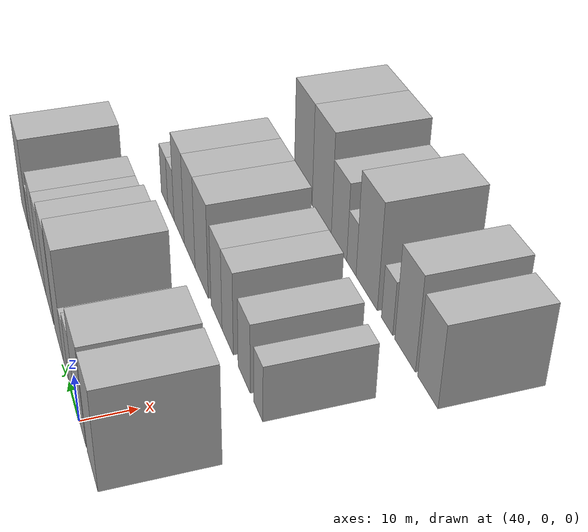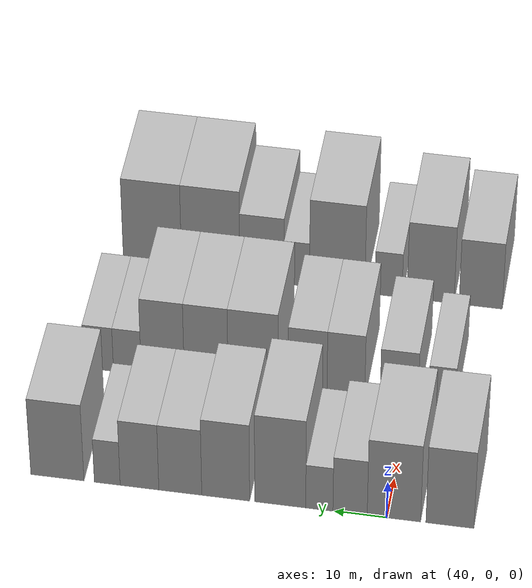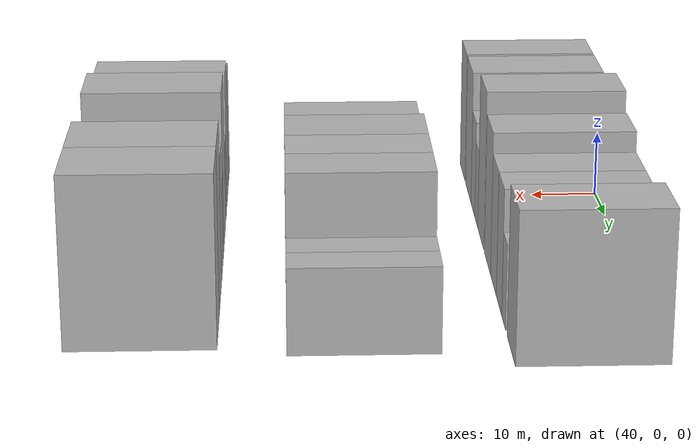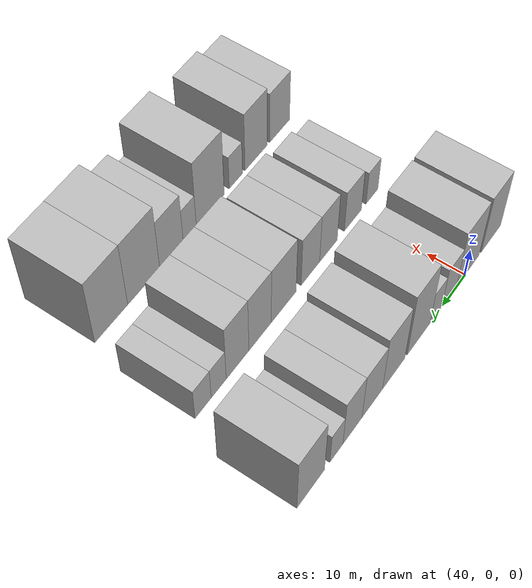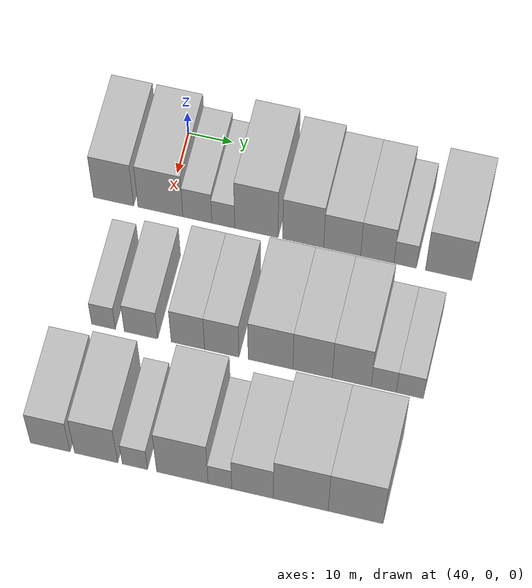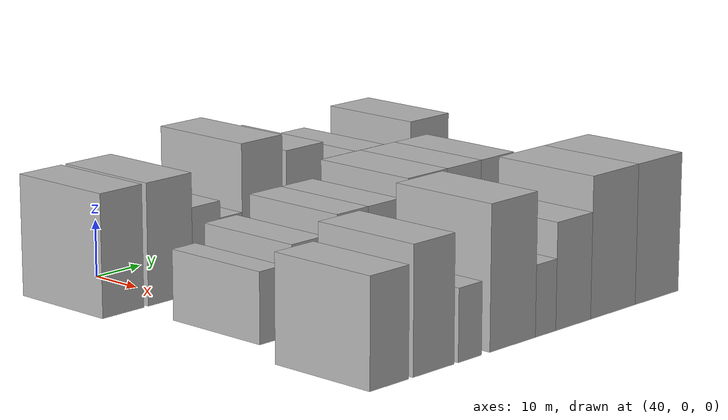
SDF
<sdf version="1.6">
 <world name="default">
  <model name="building_31">
   <static>1</static>
   <pose>50.0000 -11.9085 0 0.000000 0.000000 0.000000</pose>
   <link name="link">
    <pose>0 0 10.50 0 0 0</pose>
    <collision name="collision"><geometry><box><size>20.0000 9.0835 21.0000</size></box></geometry></collision>
    <visual name="visual">
     <cast_shadows>0</cast_shadows>
     <geometry><box><size>20.0000 9.0835 21.0000</size></box></geometry>
     <material>
      <script>
       <uri>model://HANNAS_wall/materials/scripts</uri>
       <uri>model://HANNAS_wall/materials/textures</uri>
       <name>vrc/HANNAS_wall</name>
      </script>
     </material>
    </visual>
   </link>
  </model>
  <model name="building_32">
   <static>1</static>
   <pose>50.0000 -1.2948 0 0.000000 0.000000 0.000000</pose>
   <link name="link">
    <pose>0 0 10.50 0 0 0</pose>
    <collision name="collision"><geometry><box><size>20.0000 10.1440 21.0000</size></box></geometry></collision>
    <visual name="visual">
     <cast_shadows>0</cast_shadows>
     <geometry><box><size>20.0000 10.1440 21.0000</size></box></geometry>
     <material>
      <script>
       <uri>model://HANNAS_wall/materials/scripts</uri>
       <uri>model://HANNAS_wall/materials/textures</uri>
       <name>vrc/HANNAS_wall</name>
      </script>
     </material>
    </visual>
   </link>
  </model>
  <model name="building_33">
   <static>1</static>
   <pose>50.0000 7.0367 0 0.000000 0.000000 0.000000</pose>
   <link name="link">
    <pose>0 0 7.50 0 0 0</pose>
    <collision name="collision"><geometry><box><size>20.0000 6.5191 15.0000</size></box></geometry></collision>
    <visual name="visual">
     <cast_shadows>0</cast_shadows>
     <geometry><box><size>20.0000 6.5191 15.0000</size></box></geometry>
     <material>
      <script>
       <uri>model://HANNAS_wall/materials/scripts</uri>
       <uri>model://HANNAS_wall/materials/textures</uri>
       <name>vrc/HANNAS_wall</name>
      </script>
     </material>
    </visual>
   </link>
  </model>
  <model name="building_34">
   <static>1</static>
   <pose>50.0000 12.8875 0 0.000000 0.000000 0.000000</pose>
   <link name="link">
    <pose>0 0 6.00 0 0 0</pose>
    <collision name="collision"><geometry><box><size>20.0000 5.1826 12.0000</size></box></geometry></collision>
    <visual name="visual">
     <cast_shadows>0</cast_shadows>
     <geometry><box><size>20.0000 5.1826 12.0000</size></box></geometry>
     <material>
      <script>
       <uri>model://HANNAS_wall/materials/scripts</uri>
       <uri>model://HANNAS_wall/materials/textures</uri>
       <name>vrc/HANNAS_wall</name>
      </script>
     </material>
    </visual>
   </link>
  </model>
  <model name="building_35">
   <static>1</static>
   <pose>50.0000 20.3388 0 0.000000 0.000000 0.000000</pose>
   <link name="link">
    <pose>0 0 12.00 0 0 0</pose>
    <collision name="collision"><geometry><box><size>20.0000 9.7201 24.0000</size></box></geometry></collision>
    <visual name="visual">
     <cast_shadows>0</cast_shadows>
     <geometry><box><size>20.0000 9.7201 24.0000</size></box></geometry>
     <material>
      <script>
       <uri>model://HANNAS_wall/materials/scripts</uri>
       <uri>model://HANNAS_wall/materials/textures</uri>
       <name>vrc/HANNAS_wall</name>
      </script>
     </material>
    </visual>
   </link>
  </model>
  <model name="building_36">
   <static>1</static>
   <pose>50.0000 30.7863 0 0.000000 0.000000 0.000000</pose>
   <link name="link">
    <pose>0 0 10.50 0 0 0</pose>
    <collision name="collision"><geometry><box><size>20.0000 9.1749 21.0000</size></box></geometry></collision>
    <visual name="visual">
     <cast_shadows>0</cast_shadows>
     <geometry><box><size>20.0000 9.1749 21.0000</size></box></geometry>
     <material>
      <script>
       <uri>model://HANNAS_wall/materials/scripts</uri>
       <uri>model://HANNAS_wall/materials/textures</uri>
       <name>vrc/HANNAS_wall</name>
      </script>
     </material>
    </visual>
   </link>
  </model>
  <model name="building_37">
   <static>1</static>
   <pose>50.0000 39.4990 0 0.000000 0.000000 0.000000</pose>
   <link name="link">
    <pose>0 0 9.00 0 0 0</pose>
    <collision name="collision"><geometry><box><size>20.0000 8.2504 18.0000</size></box></geometry></collision>
    <visual name="visual">
     <cast_shadows>0</cast_shadows>
     <geometry><box><size>20.0000 8.2504 18.0000</size></box></geometry>
     <material>
      <script>
       <uri>model://HANNAS_wall/materials/scripts</uri>
       <uri>model://HANNAS_wall/materials/textures</uri>
       <name>vrc/HANNAS_wall</name>
      </script>
     </material>
    </visual>
   </link>
  </model>
  <model name="building_38">
   <static>1</static>
   <pose>50.0000 47.3485 0 0.000000 0.000000 0.000000</pose>
   <link name="link">
    <pose>0 0 9.00 0 0 0</pose>
    <collision name="collision"><geometry><box><size>20.0000 7.4485 18.0000</size></box></geometry></collision>
    <visual name="visual">
     <cast_shadows>0</cast_shadows>
     <geometry><box><size>20.0000 7.4485 18.0000</size></box></geometry>
     <material>
      <script>
       <uri>model://HANNAS_wall/materials/scripts</uri>
       <uri>model://HANNAS_wall/materials/textures</uri>
       <name>vrc/HANNAS_wall</name>
      </script>
     </material>
    </visual>
   </link>
  </model>
  <model name="building_39">
   <static>1</static>
   <pose>50.0000 53.5620 0 0.000000 0.000000 0.000000</pose>
   <link name="link">
    <pose>0 0 6.00 0 0 0</pose>
    <collision name="collision"><geometry><box><size>20.0000 4.9785 12.0000</size></box></geometry></collision>
    <visual name="visual">
     <cast_shadows>0</cast_shadows>
     <geometry><box><size>20.0000 4.9785 12.0000</size></box></geometry>
     <material>
      <script>
       <uri>model://HANNAS_wall/materials/scripts</uri>
       <uri>model://HANNAS_wall/materials/textures</uri>
       <name>vrc/HANNAS_wall</name>
      </script>
     </material>
    </visual>
   </link>
  </model>
  <model name="building_40">
   <static>1</static>
   <pose>50.0000 63.1879 0 0.000000 0.000000 0.000000</pose>
   <link name="link">
    <pose>0 0 10.50 0 0 0</pose>
    <collision name="collision"><geometry><box><size>20.0000 10.2733 21.0000</size></box></geometry></collision>
    <visual name="visual">
     <cast_shadows>0</cast_shadows>
     <geometry><box><size>20.0000 10.2733 21.0000</size></box></geometry>
     <material>
      <script>
       <uri>model://HANNAS_wall/materials/scripts</uri>
       <uri>model://HANNAS_wall/materials/textures</uri>
       <name>vrc/HANNAS_wall</name>
      </script>
     </material>
    </visual>
   </link>
  </model>
  <model name="building_109">
   <static>1</static>
   <pose>79.0000 -6.5054 0 0.000000 0.000000 0.000000</pose>
   <link name="link">
    <pose>0 0 6.00 0 0 0</pose>
    <collision name="collision"><geometry><box><size>20.0000 5.2598 12.0000</size></box></geometry></collision>
    <visual name="visual">
     <cast_shadows>0</cast_shadows>
     <geometry><box><size>20.0000 5.2598 12.0000</size></box></geometry>
     <material>
      <script>
       <uri>model://HANNAS_wall/materials/scripts</uri>
       <uri>model://HANNAS_wall/materials/textures</uri>
       <name>vrc/HANNAS_wall</name>
      </script>
     </material>
    </visual>
   </link>
  </model>
  <model name="building_110">
   <static>1</static>
   <pose>79.0000 1.8240 0 0.000000 0.000000 0.000000</pose>
   <link name="link">
    <pose>0 0 7.50 0 0 0</pose>
    <collision name="collision"><geometry><box><size>20.0000 7.3990 15.0000</size></box></geometry></collision>
    <visual name="visual">
     <cast_shadows>0</cast_shadows>
     <geometry><box><size>20.0000 7.3990 15.0000</size></box></geometry>
     <material>
      <script>
       <uri>model://HANNAS_wall/materials/scripts</uri>
       <uri>model://HANNAS_wall/materials/textures</uri>
       <name>vrc/HANNAS_wall</name>
      </script>
     </material>
    </visual>
   </link>
  </model>
  <model name="building_111">
   <static>1</static>
   <pose>79.0000 12.2168 0 0.000000 0.000000 0.000000</pose>
   <link name="link">
    <pose>0 0 9.00 0 0 0</pose>
    <collision name="collision"><geometry><box><size>20.0000 7.3866 18.0000</size></box></geometry></collision>
    <visual name="visual">
     <cast_shadows>0</cast_shadows>
     <geometry><box><size>20.0000 7.3866 18.0000</size></box></geometry>
     <material>
      <script>
       <uri>model://HANNAS_wall/materials/scripts</uri>
       <uri>model://HANNAS_wall/materials/textures</uri>
       <name>vrc/HANNAS_wall</name>
      </script>
     </material>
    </visual>
   </link>
  </model>
  <model name="building_112">
   <static>1</static>
   <pose>79.0000 19.7030 0 0.000000 0.000000 0.000000</pose>
   <link name="link">
    <pose>0 0 9.00 0 0 0</pose>
    <collision name="collision"><geometry><box><size>20.0000 7.5858 18.0000</size></box></geometry></collision>
    <visual name="visual">
     <cast_shadows>0</cast_shadows>
     <geometry><box><size>20.0000 7.5858 18.0000</size></box></geometry>
     <material>
      <script>
       <uri>model://HANNAS_wall/materials/scripts</uri>
       <uri>model://HANNAS_wall/materials/textures</uri>
       <name>vrc/HANNAS_wall</name>
      </script>
     </material>
    </visual>
   </link>
  </model>
  <model name="building_113">
   <static>1</static>
   <pose>79.0000 30.4087 0 0.000000 0.000000 0.000000</pose>
   <link name="link">
    <pose>0 0 10.50 0 0 0</pose>
    <collision name="collision"><geometry><box><size>20.0000 9.8256 21.0000</size></box></geometry></collision>
    <visual name="visual">
     <cast_shadows>0</cast_shadows>
     <geometry><box><size>20.0000 9.8256 21.0000</size></box></geometry>
     <material>
      <script>
       <uri>model://HANNAS_wall/materials/scripts</uri>
       <uri>model://HANNAS_wall/materials/textures</uri>
       <name>vrc/HANNAS_wall</name>
      </script>
     </material>
    </visual>
   </link>
  </model>
  <model name="building_114">
   <static>1</static>
   <pose>79.0000 39.6394 0 0.000000 0.000000 0.000000</pose>
   <link name="link">
    <pose>0 0 10.50 0 0 0</pose>
    <collision name="collision"><geometry><box><size>20.0000 8.6358 21.0000</size></box></geometry></collision>
    <visual name="visual">
     <cast_shadows>0</cast_shadows>
     <geometry><box><size>20.0000 8.6358 21.0000</size></box></geometry>
     <material>
      <script>
       <uri>model://HANNAS_wall/materials/scripts</uri>
       <uri>model://HANNAS_wall/materials/textures</uri>
       <name>vrc/HANNAS_wall</name>
      </script>
     </material>
    </visual>
   </link>
  </model>
  <model name="building_115">
   <static>1</static>
   <pose>79.0000 48.2117 0 0.000000 0.000000 0.000000</pose>
   <link name="link">
    <pose>0 0 10.50 0 0 0</pose>
    <collision name="collision"><geometry><box><size>20.0000 8.5088 21.0000</size></box></geometry></collision>
    <visual name="visual">
     <cast_shadows>0</cast_shadows>
     <geometry><box><size>20.0000 8.5088 21.0000</size></box></geometry>
     <material>
      <script>
       <uri>model://HANNAS_wall/materials/scripts</uri>
       <uri>model://HANNAS_wall/materials/textures</uri>
       <name>vrc/HANNAS_wall</name>
      </script>
     </material>
    </visual>
   </link>
  </model>
  <model name="building_116">
   <static>1</static>
   <pose>79.0000 55.2137 0 0.000000 0.000000 0.000000</pose>
   <link name="link">
    <pose>0 0 6.00 0 0 0</pose>
    <collision name="collision"><geometry><box><size>20.0000 5.4953 12.0000</size></box></geometry></collision>
    <visual name="visual">
     <cast_shadows>0</cast_shadows>
     <geometry><box><size>20.0000 5.4953 12.0000</size></box></geometry>
     <material>
      <script>
       <uri>model://HANNAS_wall/materials/scripts</uri>
       <uri>model://HANNAS_wall/materials/textures</uri>
       <name>vrc/HANNAS_wall</name>
      </script>
     </material>
    </visual>
   </link>
  </model>
  <model name="building_117">
   <static>1</static>
   <pose>79.0000 60.8934 0 0.000000 0.000000 0.000000</pose>
   <link name="link">
    <pose>0 0 6.00 0 0 0</pose>
    <collision name="collision"><geometry><box><size>20.0000 5.8640 12.0000</size></box></geometry></collision>
    <visual name="visual">
     <cast_shadows>0</cast_shadows>
     <geometry><box><size>20.0000 5.8640 12.0000</size></box></geometry>
     <material>
      <script>
       <uri>model://HANNAS_wall/materials/scripts</uri>
       <uri>model://HANNAS_wall/materials/textures</uri>
       <name>vrc/HANNAS_wall</name>
      </script>
     </material>
    </visual>
   </link>
  </model>
  <model name="building_182">
   <static>1</static>
   <pose>108.0000 -10.4220 0 0.000000 0.000000 0.000000</pose>
   <link name="link">
    <pose>0 0 9.00 0 0 0</pose>
    <collision name="collision"><geometry><box><size>20.0000 8.6236 18.0000</size></box></geometry></collision>
    <visual name="visual">
     <cast_shadows>0</cast_shadows>
     <geometry><box><size>20.0000 8.6236 18.0000</size></box></geometry>
     <material>
      <script>
       <uri>model://HANNAS_wall/materials/scripts</uri>
       <uri>model://HANNAS_wall/materials/textures</uri>
       <name>vrc/HANNAS_wall</name>
      </script>
     </material>
    </visual>
   </link>
  </model>
  <model name="building_183">
   <static>1</static>
   <pose>108.0000 -0.4145 0 0.000000 0.000000 0.000000</pose>
   <link name="link">
    <pose>0 0 10.50 0 0 0</pose>
    <collision name="collision"><geometry><box><size>20.0000 9.3914 21.0000</size></box></geometry></collision>
    <visual name="visual">
     <cast_shadows>0</cast_shadows>
     <geometry><box><size>20.0000 9.3914 21.0000</size></box></geometry>
     <material>
      <script>
       <uri>model://HANNAS_wall/materials/scripts</uri>
       <uri>model://HANNAS_wall/materials/textures</uri>
       <name>vrc/HANNAS_wall</name>
      </script>
     </material>
    </visual>
   </link>
  </model>
  <model name="building_184">
   <static>1</static>
   <pose>108.0000 8.0195 0 0.000000 0.000000 0.000000</pose>
   <link name="link">
    <pose>0 0 6.00 0 0 0</pose>
    <collision name="collision"><geometry><box><size>20.0000 5.4766 12.0000</size></box></geometry></collision>
    <visual name="visual">
     <cast_shadows>0</cast_shadows>
     <geometry><box><size>20.0000 5.4766 12.0000</size></box></geometry>
     <material>
      <script>
       <uri>model://HANNAS_wall/materials/scripts</uri>
       <uri>model://HANNAS_wall/materials/textures</uri>
       <name>vrc/HANNAS_wall</name>
      </script>
     </material>
    </visual>
   </link>
  </model>
  <model name="building_185">
   <static>1</static>
   <pose>108.0000 18.3184 0 0.000000 0.000000 0.000000</pose>
   <link name="link">
    <pose>0 0 12.00 0 0 0</pose>
    <collision name="collision"><geometry><box><size>20.0000 11.1212 24.0000</size></box></geometry></collision>
    <visual name="visual">
     <cast_shadows>0</cast_shadows>
     <geometry><box><size>20.0000 11.1212 24.0000</size></box></geometry>
     <material>
      <script>
       <uri>model://HANNAS_wall/materials/scripts</uri>
       <uri>model://HANNAS_wall/materials/textures</uri>
       <name>vrc/HANNAS_wall</name>
      </script>
     </material>
    </visual>
   </link>
  </model>
  <model name="building_186">
   <static>1</static>
   <pose>108.0000 26.4345 0 0.000000 0.000000 0.000000</pose>
   <link name="link">
    <pose>0 0 6.00 0 0 0</pose>
    <collision name="collision"><geometry><box><size>20.0000 5.1110 12.0000</size></box></geometry></collision>
    <visual name="visual">
     <cast_shadows>0</cast_shadows>
     <geometry><box><size>20.0000 5.1110 12.0000</size></box></geometry>
     <material>
      <script>
       <uri>model://HANNAS_wall/materials/scripts</uri>
       <uri>model://HANNAS_wall/materials/textures</uri>
       <name>vrc/HANNAS_wall</name>
      </script>
     </material>
    </visual>
   </link>
  </model>
  <model name="building_187">
   <static>1</static>
   <pose>108.0000 33.4544 0 0.000000 0.000000 0.000000</pose>
   <link name="link">
    <pose>0 0 9.00 0 0 0</pose>
    <collision name="collision"><geometry><box><size>20.0000 8.9288 18.0000</size></box></geometry></collision>
    <visual name="visual">
     <cast_shadows>0</cast_shadows>
     <geometry><box><size>20.0000 8.9288 18.0000</size></box></geometry>
     <material>
      <script>
       <uri>model://HANNAS_wall/materials/scripts</uri>
       <uri>model://HANNAS_wall/materials/textures</uri>
       <name>vrc/HANNAS_wall</name>
      </script>
     </material>
    </visual>
   </link>
  </model>
  <model name="building_188">
   <static>1</static>
   <pose>108.0000 43.8163 0 0.000000 0.000000 0.000000</pose>
   <link name="link">
    <pose>0 0 12.00 0 0 0</pose>
    <collision name="collision"><geometry><box><size>20.0000 11.7948 24.0000</size></box></geometry></collision>
    <visual name="visual">
     <cast_shadows>0</cast_shadows>
     <geometry><box><size>20.0000 11.7948 24.0000</size></box></geometry>
     <material>
      <script>
       <uri>model://HANNAS_wall/materials/scripts</uri>
       <uri>model://HANNAS_wall/materials/textures</uri>
       <name>vrc/HANNAS_wall</name>
      </script>
     </material>
    </visual>
   </link>
  </model>
  <model name="building_189">
   <static>1</static>
   <pose>108.0000 55.6040 0 0.000000 0.000000 0.000000</pose>
   <link name="link">
    <pose>0 0 12.00 0 0 0</pose>
    <collision name="collision"><geometry><box><size>20.0000 11.7806 24.0000</size></box></geometry></collision>
    <visual name="visual">
     <cast_shadows>0</cast_shadows>
     <geometry><box><size>20.0000 11.7806 24.0000</size></box></geometry>
     <material>
      <script>
       <uri>model://HANNAS_wall/materials/scripts</uri>
       <uri>model://HANNAS_wall/materials/textures</uri>
       <name>vrc/HANNAS_wall</name>
      </script>
     </material>
    </visual>
   </link>
  </model>
 </world>
</sdf>
